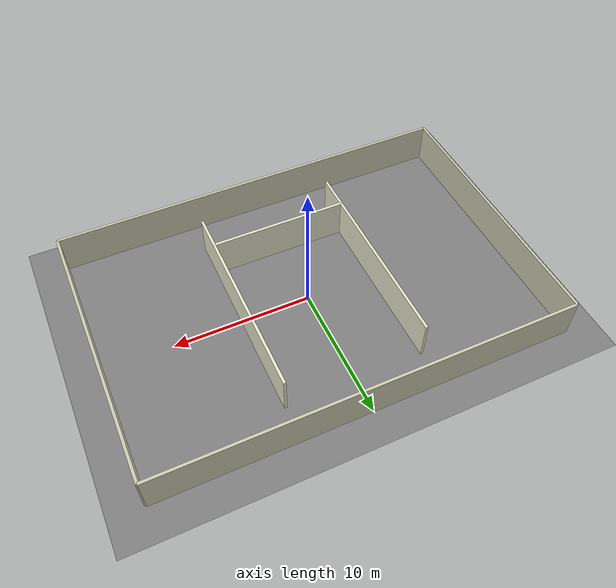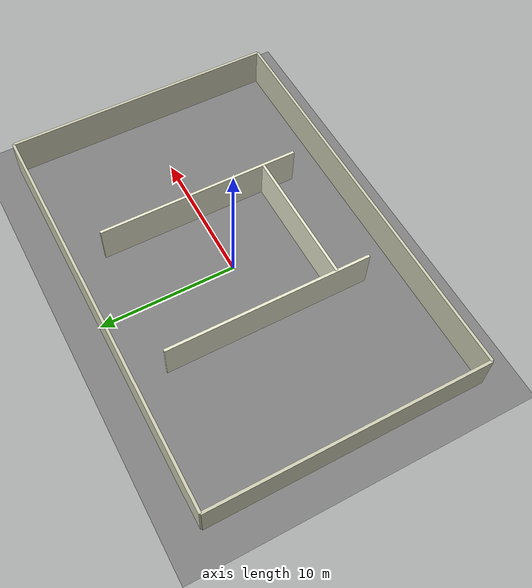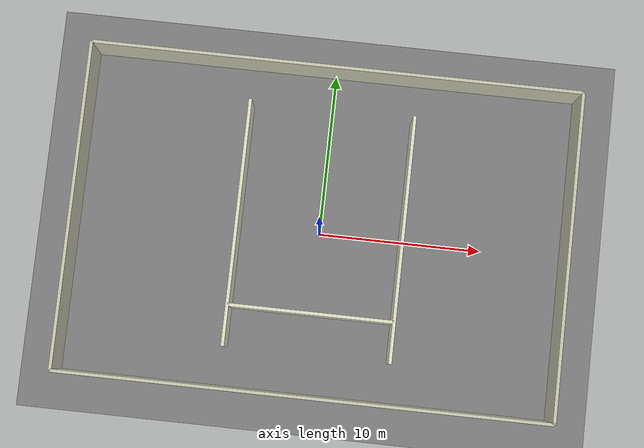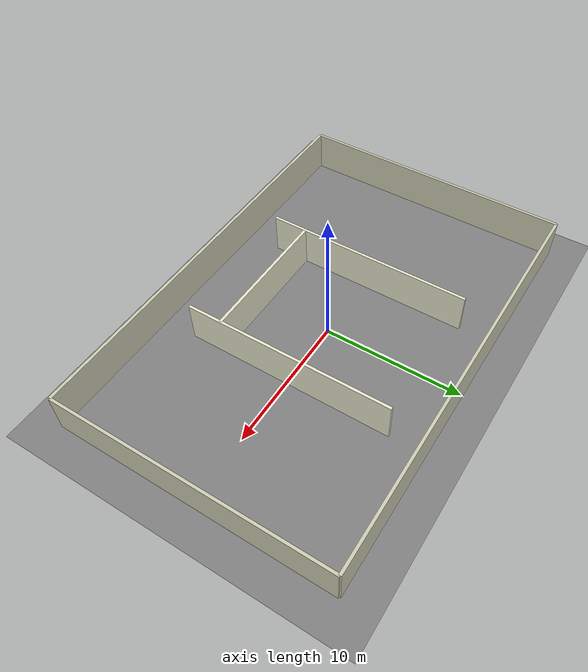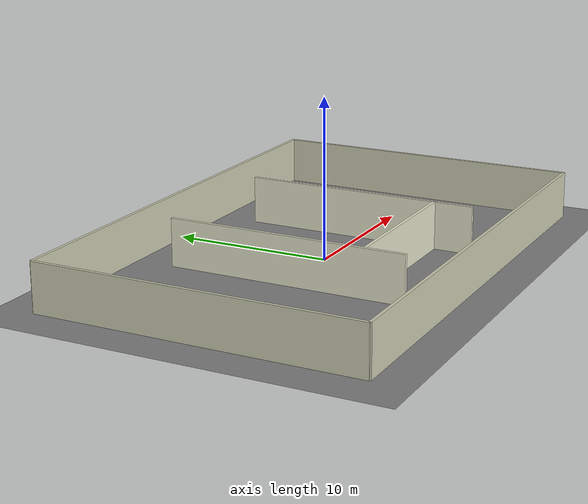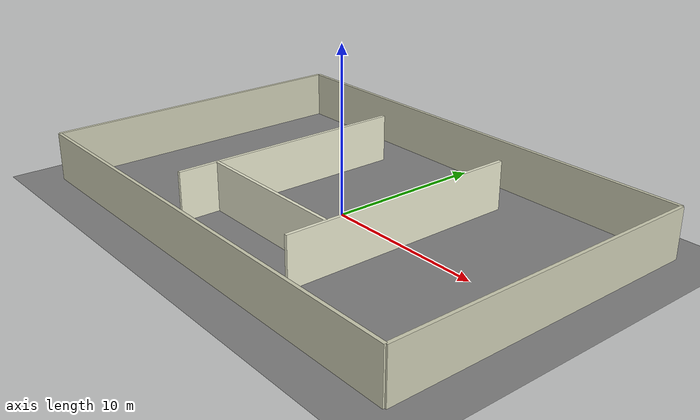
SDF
<?xml version="1.0"?>
<sdf version="1.9">
  <world name="three_room_apartment">

    <physics name="ode" type="ode">
      <max_step_size>0.001</max_step_size>
      <real_time_factor>1.0</real_time_factor>
      <real_time_update_rate>1000</real_time_update_rate>
    </physics>

    <scene>
      <ambient>0.6 0.6 0.6 1</ambient>
      <background>0.7 0.7 0.7 1</background>
      <shadows>true</shadows>
      <grid>true</grid>
    </scene>

    <light name="sun" type="directional">
      <cast_shadows>true</cast_shadows>
      <pose>0 0 20 0 0 0</pose>
      <diffuse>0.9 0.9 0.9 1</diffuse>
      <specular>0.3 0.3 0.3 1</specular>
      <direction>-0.5 0.5 -0.9</direction>
    </light>

    <model name="ground_plane">
      <static>true</static>
      <pose>0 0 0 0 0 0</pose>
      <link name="link">
        <collision name="collision">
          <geometry>
            <plane>
              <normal>0 0 1</normal>
              <size>30 20</size>
            </plane>
          </geometry>
        </collision>
        <visual name="visual">
          <cast_shadows>false</cast_shadows>
          <geometry>
            <plane>
              <normal>0 0 1</normal>
              <size>30 20</size>
            </plane>
          </geometry>
          <material>
            <ambient>0.5 0.5 0.5 1</ambient>
            <diffuse>0.5 0.5 0.5 1</diffuse>
          </material>
        </visual>
      </link>
    </model>

    <model name="wall_north">
      <static>true</static>
      <pose>0 10 1.5 0 0 0</pose>
      <link name="link">
        <collision name="collision">
          <geometry>
            <box><size>30 0.2 3</size></box>
          </geometry>
        </collision>
        <visual name="visual">
          <geometry>
            <box><size>30 0.2 3</size></box>
          </geometry>
          <material>
            <ambient>0.8 0.8 0.7 1</ambient>
            <diffuse>0.8 0.8 0.7 1</diffuse>
          </material>
        </visual>
      </link>
    </model>

    <model name="wall_south">
      <static>true</static>
      <pose>0 -10 1.5 0 0 0</pose>
      <link name="link">
        <collision name="collision">
          <geometry>
            <box><size>30 0.2 3</size></box>
          </geometry>
        </collision>
        <visual name="visual">
          <geometry>
            <box><size>30 0.2 3</size></box>
          </geometry>
          <material>
            <ambient>0.8 0.8 0.7 1</ambient>
            <diffuse>0.8 0.8 0.7 1</diffuse>
          </material>
        </visual>
      </link>
    </model>

    <model name="wall_west">
      <static>true</static>
      <pose>-15 0 1.5 0 0 0</pose>
      <link name="link">
        <collision name="collision">
          <geometry>
            <box><size>0.2 20 3</size></box>
          </geometry>
        </collision>
        <visual name="visual">
          <geometry>
            <box><size>0.2 20 3</size></box>
          </geometry>
          <material>
            <ambient>0.8 0.8 0.7 1</ambient>
            <diffuse>0.8 0.8 0.7 1</diffuse>
          </material>
        </visual>
      </link>
    </model>

    <model name="wall_east">
      <static>true</static>
      <pose>15 0 1.5 0 0 0</pose>
      <link name="link">
        <collision name="collision">
          <geometry>
            <box><size>0.2 20 3</size></box>
          </geometry>
        </collision>
        <visual name="visual">
          <geometry>
            <box><size>0.2 20 3</size></box>
          </geometry>
          <material>
            <ambient>0.8 0.8 0.7 1</ambient>
            <diffuse>0.8 0.8 0.7 1</diffuse>
          </material>
        </visual>
      </link>
    </model>

    <model name="inner_wall_1">
      <static>true</static>
      <pose>-5 0 1.5 0 0 0</pose>
      <link name="link">
        <collision name="collision">
          <geometry>
            <box><size>0.2 15 3</size></box>
          </geometry>
        </collision>
        <visual name="visual">
          <geometry>
            <box><size>0.2 15 3</size></box>
          </geometry>
          <material>
            <ambient>0.9 0.9 0.8 1</ambient>
            <diffuse>0.9 0.9 0.8 1</diffuse>
          </material>
        </visual>
      </link>
    </model>

    <model name="inner_wall_2">
      <static>true</static>
      <pose>5 0 1.5 0 0 0</pose>
      <link name="link">
        <collision name="collision">
          <geometry>
            <box><size>0.2 15 3</size></box>
          </geometry>
        </collision>
        <visual name="visual">
          <geometry>
            <box><size>0.2 15 3</size></box>
          </geometry>
          <material>
            <ambient>0.9 0.9 0.8 1</ambient>
            <diffuse>0.9 0.9 0.8 1</diffuse>
          </material>
        </visual>
      </link>
    </model>

    <model name="inner_wall_3">
      <static>true</static>
      <pose>0 -5 1.5 0 0 0</pose>
      <link name="link">
        <collision name="collision">
          <geometry>
            <box><size>10 0.2 3</size></box>
          </geometry>
        </collision>
        <visual name="visual">
          <geometry>
            <box><size>10 0.2 3</size></box>
          </geometry>
          <material>
            <ambient>0.9 0.9 0.8 1</ambient>
            <diffuse>0.9 0.9 0.8 1</diffuse>
          </material>
        </visual>
      </link>
    </model>

  </world>
</sdf>
